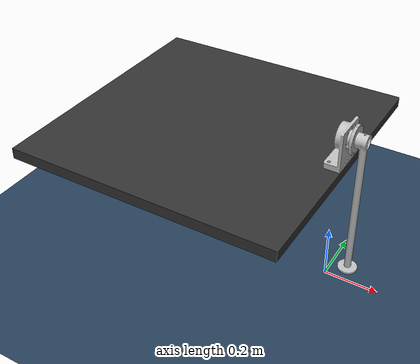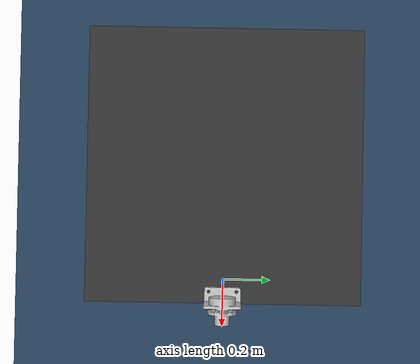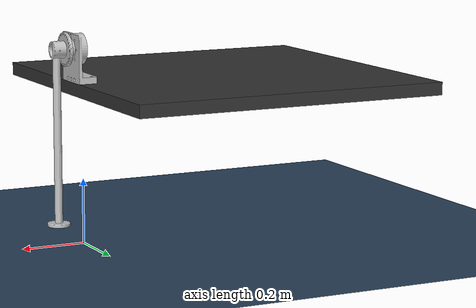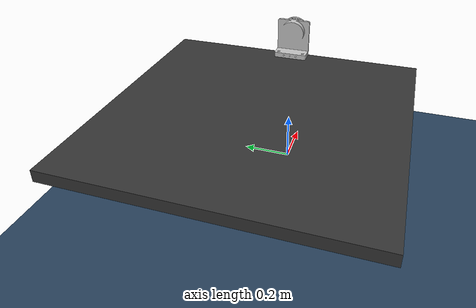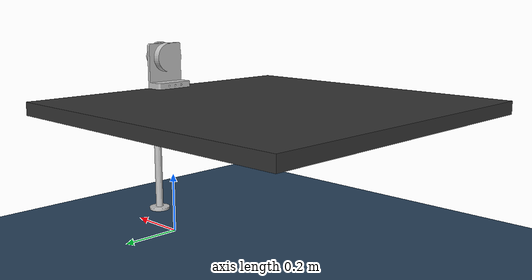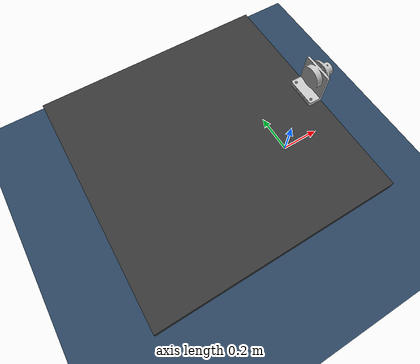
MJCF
<mujoco model="oneLink scene">
  <include file="../mjcf/onelink_robot.xml"/>

  <option timestep="0.001" gravity="0 0 -9.80665" integrator="implicitfast"/>

  <statistic center="0.3 0 0.4" extent="1"/>

  <visual>
    <headlight diffuse="0.6 0.6 0.6" ambient="0.3 0.3 0.3" specular="0 0 0"/>
    <rgba haze="0.15 0.25 0.35 1"/>
    <global azimuth="120" elevation="-20"/>
  </visual>

  <asset>
    <texture type="skybox" builtin="gradient" rgb1="0.3 0.5 0.7" rgb2="0 0 0" width="512" height="3072"/>
    <texture type="2d" name="groundplane" builtin="checker" mark="edge" rgb1="0.2 0.3 0.4" rgb2="0.1 0.2 0.3" markrgb="0.8 0.8 0.8" width="300" height="300"/>
    <material name="groundplane" texture="groundplane" texuniform="true" texrepeat="5 5" reflectance="0.2"/>
  </asset>
  <worldbody>
    <light pos="0 0 1.5" dir="0 0 -1" directional="true"/>
    <geom name="floor" size="0 0 0.05" type="plane" material="groundplane"/>
    <body name="table" pos="-0.465 0 0.48">
      <geom name="table_geom" type="box" size="0.5 0.5 0.02" material="wood_mat"/>
    </body>
  </worldbody>
</mujoco>

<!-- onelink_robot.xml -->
<mujoco model="oneLink">
  <compiler angle="radian" meshdir="../assets/"/>

  <asset>
    <mesh name="base" file="base.STL"/>
    <mesh name="link1" file="link1.STL"/>
    <material name="wood_mat" rgba="0.2 0.2 0.2 1" specular="0.1" shininess="0.5" reflectance="0.1"/>
  </asset>

  <contact>
    <exclude body1="torso" body2="link1"/>
  </contact>

  <worldbody>
    <body name="torso" pos="0 0.0 0.6" euler="0 0 0">
      <geom type="mesh" rgba="0.7529 0.7529 0.7529 1" mesh="base"/>
      <body name="link1" pos="0.0426 0 0">
        <inertial pos="0.0426 0 -0.211027" quat="1 0 0 0" mass="1.13355" diaginertia="0.0442953 0.0442502 0.000408361"/>
        <joint name="joint1" type="hinge" pos="0.0426 0 0" axis="1 0 0" damping="0.0" range="-6.2832 6.2832" actuatorfrcrange="-100 100"/>
        <geom type="mesh" rgba="0.75294 0.75294 0.75294 1" mesh="link1"/>
        <site name="EE" pos="0.039 0 -0.539" rgba="1 0 0 1" size="0.001" />
      </body>
    </body>
  </worldbody>

  <actuator>
    <position name="motor1" joint="joint1" kp="1000" dampratio="1.0"/>
  </actuator>
  <sensor>
    <framepos name="eePos" objtype="site" objname="EE"/>
    <framequat name="eeQuat" objtype="site" objname="EE"/>
    <framelinvel name="eeLinVel" objtype="site" objname="EE"/>
    <frameangvel name="eeAngVel" objtype="site" objname="EE"/>
    <velocimeter name="eeVel" site="EE"/>
    <gyro name="eeGyro" site="EE"/>
    <accelerometer name="eeAcc" site="EE"/>
    <force name="eeForce" site="EE"/>
    <torque name="eeTorque" site="EE"/>
  </sensor>

  <keyframe>
    <key name="home" qpos="0" ctrl="0"/>
    <key name="standby1" qpos="1.57079" ctrl="1.57079"/>
    <key name="standby2" qpos="-1.57079" ctrl="-1.57079"/>
    <key name="standby3" qpos="-3.1415926" ctrl="-3.1415926"/>
  </keyframe>
</mujoco>
